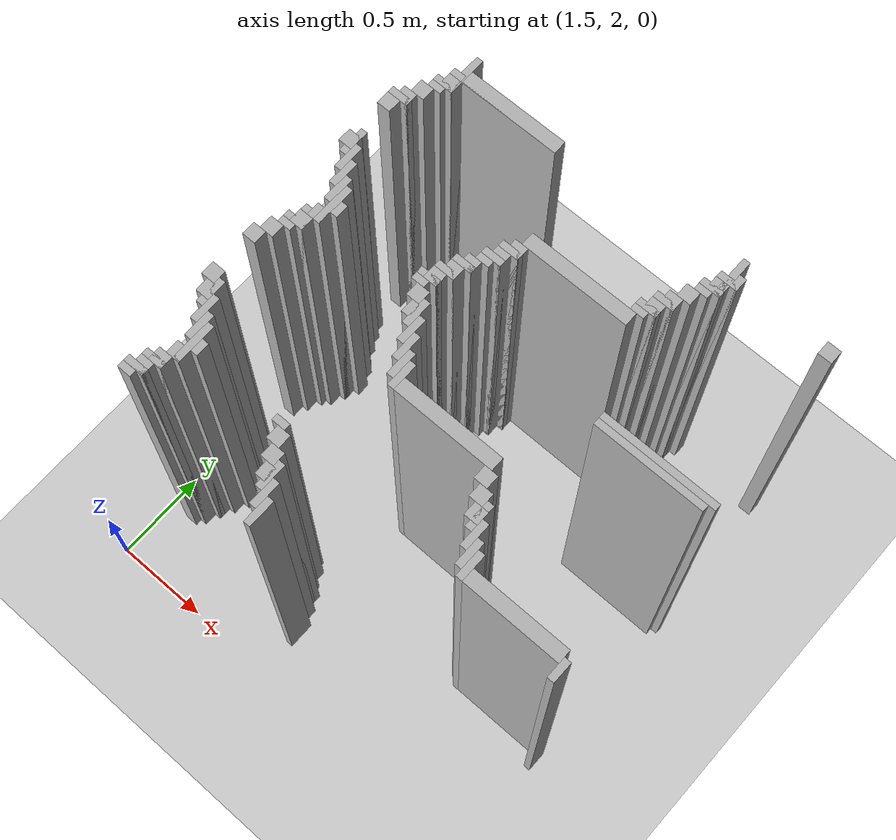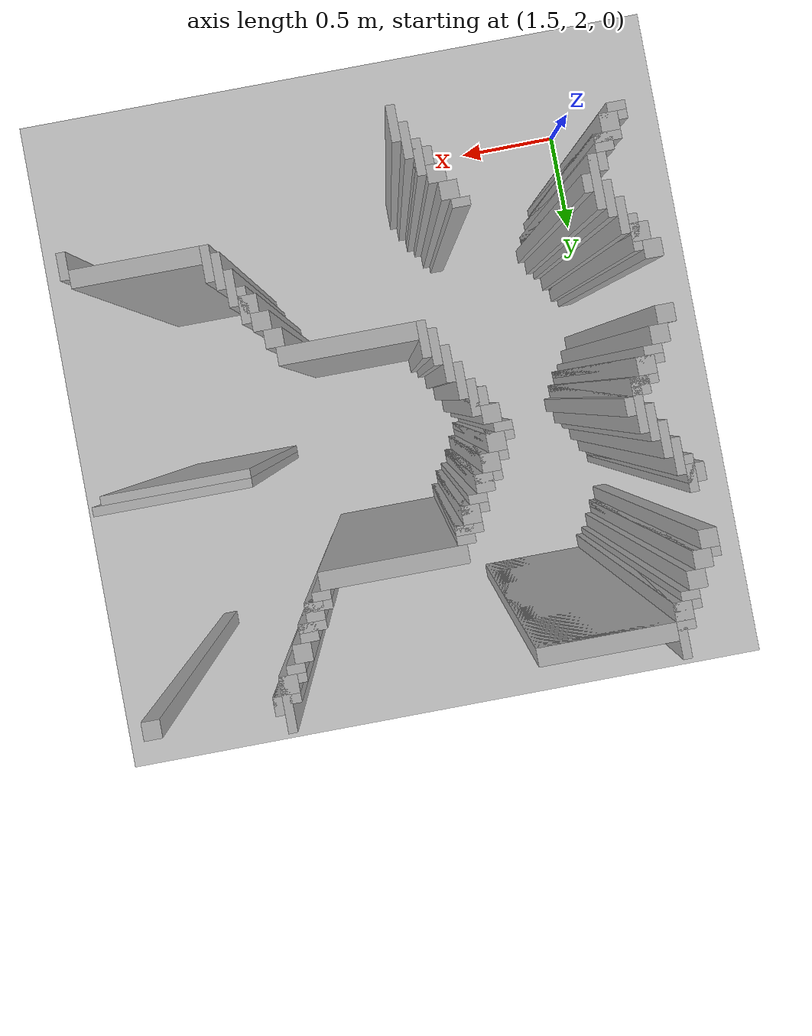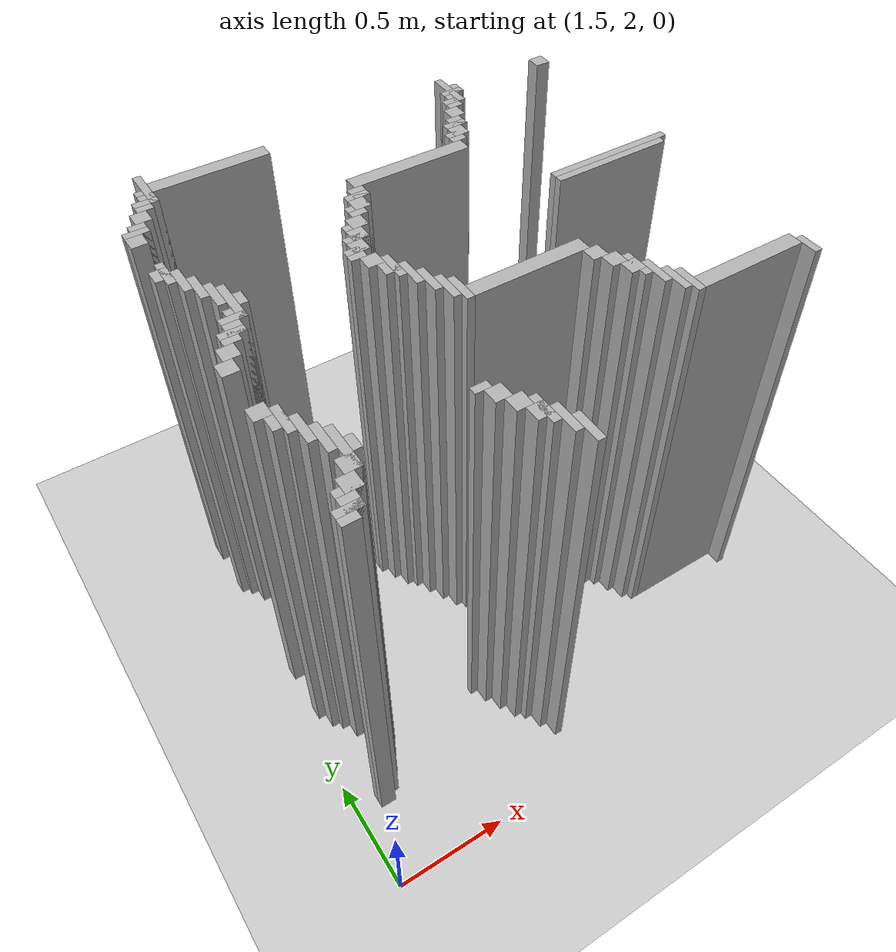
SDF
<sdf version="1.6">
 <world name="slam_world">
  <model name="ground_plane">
   <static>true</static>
   <link name="link">
    <collision name="collision">
     <geometry><plane><normal>0 0 1</normal><size>100 100</size></plane></geometry>
    </collision>
    <visual name="visual">
     <geometry><plane><normal>0 0 1</normal><size>100 100</size></plane></geometry>
     <material>
      <ambient>0.8 0.8 0.8 1</ambient>
      <diffuse>0.8 0.8 0.8 1</diffuse>
      <specular>0.8 0.8 0.8 1</specular>
     </material>
    </visual>
   </link>
  </model>
  <model name="wall_4396">
   <static>true</static>
   <pose>1.75754060324826 4.280742459396752 1.0 0 0 0</pose>
   <link name="link">
    <collision name="collision">
     <geometry><box><size>0.03480278422273782 0.2088167053364269 2.0</size></box></geometry>
    </collision>
    <visual name="visual">
     <geometry><box><size>0.03480278422273782 0.2088167053364269 2.0</size></box></geometry>
     <material><ambient>0.5 0.5 0.5 1</ambient><diffuse>0.7 0.7 0.7 1</diffuse></material>
    </visual>
   </link>
  </model>
  <model name="wall_4397">
   <static>true</static>
   <pose>3.219257540603248 4.280742459396752 1.0 0 0 0</pose>
   <link name="link">
    <collision name="collision">
     <geometry><box><size>0.03480278422273782 0.2088167053364269 2.0</size></box></geometry>
    </collision>
    <visual name="visual">
     <geometry><box><size>0.03480278422273782 0.2088167053364269 2.0</size></box></geometry>
     <material><ambient>0.5 0.5 0.5 1</ambient><diffuse>0.7 0.7 0.7 1</diffuse></material>
    </visual>
   </link>
  </model>
  <model name="wall_4415">
   <static>true</static>
   <pose>2.0359628770301623 4.280742459396752 1.0 0 0 0</pose>
   <link name="link">
    <collision name="collision">
     <geometry><box><size>0.5220417633410672 0.06960556844547564 2.0</size></box></geometry>
    </collision>
    <visual name="visual">
     <geometry><box><size>0.5220417633410672 0.06960556844547564 2.0</size></box></geometry>
     <material><ambient>0.5 0.5 0.5 1</ambient><diffuse>0.7 0.7 0.7 1</diffuse></material>
    </visual>
   </link>
  </model>
  <model name="wall_4416">
   <static>true</static>
   <pose>3.254060324825986 4.280742459396752 1.0 0 0 0</pose>
   <link name="link">
    <collision name="collision">
     <geometry><box><size>0.03480278422273782 0.06960556844547564 2.0</size></box></geometry>
    </collision>
    <visual name="visual">
     <geometry><box><size>0.03480278422273782 0.06960556844547564 2.0</size></box></geometry>
     <material><ambient>0.5 0.5 0.5 1</ambient><diffuse>0.7 0.7 0.7 1</diffuse></material>
    </visual>
   </link>
  </model>
  <model name="wall_4417">
   <static>true</static>
   <pose>3.7238979118329465 4.280742459396752 1.0 0 0 0</pose>
   <link name="link">
    <collision name="collision">
     <geometry><box><size>0.06960556844547564 0.06960556844547564 2.0</size></box></geometry>
    </collision>
    <visual name="visual">
     <geometry><box><size>0.06960556844547564 0.06960556844547564 2.0</size></box></geometry>
     <material><ambient>0.5 0.5 0.5 1</ambient><diffuse>0.7 0.7 0.7 1</diffuse></material>
    </visual>
   </link>
  </model>
  <model name="wall_4429">
   <static>true</static>
   <pose>2.0011600928074245 4.263341067285383 1.0 0 0 0</pose>
   <link name="link">
    <collision name="collision">
     <geometry><box><size>0.5916473317865429 0.03480278422273782 2.0</size></box></geometry>
    </collision>
    <visual name="visual">
     <geometry><box><size>0.5916473317865429 0.03480278422273782 2.0</size></box></geometry>
     <material><ambient>0.5 0.5 0.5 1</ambient><diffuse>0.7 0.7 0.7 1</diffuse></material>
    </visual>
   </link>
  </model>
  <model name="wall_4430">
   <static>true</static>
   <pose>3.219257540603248 4.263341067285383 1.0 0 0 0</pose>
   <link name="link">
    <collision name="collision">
     <geometry><box><size>0.10440835266821345 0.03480278422273782 2.0</size></box></geometry>
    </collision>
    <visual name="visual">
     <geometry><box><size>0.10440835266821345 0.03480278422273782 2.0</size></box></geometry>
     <material><ambient>0.5 0.5 0.5 1</ambient><diffuse>0.7 0.7 0.7 1</diffuse></material>
    </visual>
   </link>
  </model>
  <model name="wall_4442">
   <static>true</static>
   <pose>1.740139211136891 4.211136890951276 1.0 0 0 0</pose>
   <link name="link">
    <collision name="collision">
     <geometry><box><size>0.06960556844547564 0.06960556844547564 2.0</size></box></geometry>
    </collision>
    <visual name="visual">
     <geometry><box><size>0.06960556844547564 0.06960556844547564 2.0</size></box></geometry>
     <material><ambient>0.5 0.5 0.5 1</ambient><diffuse>0.7 0.7 0.7 1</diffuse></material>
    </visual>
   </link>
  </model>
  <model name="wall_4443">
   <static>true</static>
   <pose>3.201856148491879 4.211136890951276 1.0 0 0 0</pose>
   <link name="link">
    <collision name="collision">
     <geometry><box><size>0.06960556844547564 0.06960556844547564 2.0</size></box></geometry>
    </collision>
    <visual name="visual">
     <geometry><box><size>0.06960556844547564 0.06960556844547564 2.0</size></box></geometry>
     <material><ambient>0.5 0.5 0.5 1</ambient><diffuse>0.7 0.7 0.7 1</diffuse></material>
    </visual>
   </link>
  </model>
  <model name="wall_4457">
   <static>true</static>
   <pose>1.722737819025522 4.193735498839907 1.0 0 0 0</pose>
   <link name="link">
    <collision name="collision">
     <geometry><box><size>0.10440835266821345 0.03480278422273782 2.0</size></box></geometry>
    </collision>
    <visual name="visual">
     <geometry><box><size>0.10440835266821345 0.03480278422273782 2.0</size></box></geometry>
     <material><ambient>0.5 0.5 0.5 1</ambient><diffuse>0.7 0.7 0.7 1</diffuse></material>
    </visual>
   </link>
  </model>
  <model name="wall_4458">
   <static>true</static>
   <pose>3.1844547563805103 4.193735498839907 1.0 0 0 0</pose>
   <link name="link">
    <collision name="collision">
     <geometry><box><size>0.10440835266821345 0.03480278422273782 2.0</size></box></geometry>
    </collision>
    <visual name="visual">
     <geometry><box><size>0.10440835266821345 0.03480278422273782 2.0</size></box></geometry>
     <material><ambient>0.5 0.5 0.5 1</ambient><diffuse>0.7 0.7 0.7 1</diffuse></material>
    </visual>
   </link>
  </model>
  <model name="wall_4472">
   <static>true</static>
   <pose>1.705336426914153 4.158932714617169 1.0 0 0 0</pose>
   <link name="link">
    <collision name="collision">
     <geometry><box><size>0.06960556844547564 0.03480278422273782 2.0</size></box></geometry>
    </collision>
    <visual name="visual">
     <geometry><box><size>0.06960556844547564 0.03480278422273782 2.0</size></box></geometry>
     <material><ambient>0.5 0.5 0.5 1</ambient><diffuse>0.7 0.7 0.7 1</diffuse></material>
    </visual>
   </link>
  </model>
  <model name="wall_4473">
   <static>true</static>
   <pose>3.167053364269141 4.158932714617169 1.0 0 0 0</pose>
   <link name="link">
    <collision name="collision">
     <geometry><box><size>0.06960556844547564 0.03480278422273782 2.0</size></box></geometry>
    </collision>
    <visual name="visual">
     <geometry><box><size>0.06960556844547564 0.03480278422273782 2.0</size></box></geometry>
     <material><ambient>0.5 0.5 0.5 1</ambient><diffuse>0.7 0.7 0.7 1</diffuse></material>
    </visual>
   </link>
  </model>
  <model name="wall_4482">
   <static>true</static>
   <pose>1.6705336426914152 4.106728538283062 1.0 0 0 0</pose>
   <link name="link">
    <collision name="collision">
     <geometry><box><size>0.06960556844547564 0.06960556844547564 2.0</size></box></geometry>
    </collision>
    <visual name="visual">
     <geometry><box><size>0.06960556844547564 0.06960556844547564 2.0</size></box></geometry>
     <material><ambient>0.5 0.5 0.5 1</ambient><diffuse>0.7 0.7 0.7 1</diffuse></material>
    </visual>
   </link>
  </model>
  <model name="wall_4483">
   <static>true</static>
   <pose>3.1322505800464038 4.106728538283062 1.0 0 0 0</pose>
   <link name="link">
    <collision name="collision">
     <geometry><box><size>0.06960556844547564 0.06960556844547564 2.0</size></box></geometry>
    </collision>
    <visual name="visual">
     <geometry><box><size>0.06960556844547564 0.06960556844547564 2.0</size></box></geometry>
     <material><ambient>0.5 0.5 0.5 1</ambient><diffuse>0.7 0.7 0.7 1</diffuse></material>
    </visual>
   </link>
  </model>
  <model name="wall_4497">
   <static>true</static>
   <pose>1.6357308584686774 4.037122969837587 1.0 0 0 0</pose>
   <link name="link">
    <collision name="collision">
     <geometry><box><size>0.06960556844547564 0.06960556844547564 2.0</size></box></geometry>
    </collision>
    <visual name="visual">
     <geometry><box><size>0.06960556844547564 0.06960556844547564 2.0</size></box></geometry>
     <material><ambient>0.5 0.5 0.5 1</ambient><diffuse>0.7 0.7 0.7 1</diffuse></material>
    </visual>
   </link>
  </model>
  <model name="wall_4498">
   <static>true</static>
   <pose>3.097447795823666 4.037122969837587 1.0 0 0 0</pose>
   <link name="link">
    <collision name="collision">
     <geometry><box><size>0.06960556844547564 0.06960556844547564 2.0</size></box></geometry>
    </collision>
    <visual name="visual">
     <geometry><box><size>0.06960556844547564 0.06960556844547564 2.0</size></box></geometry>
     <material><ambient>0.5 0.5 0.5 1</ambient><diffuse>0.7 0.7 0.7 1</diffuse></material>
    </visual>
   </link>
  </model>
  <model name="wall_4512">
   <static>true</static>
   <pose>1.6183294663573085 4.019721577726218 1.0 0 0 0</pose>
   <link name="link">
    <collision name="collision">
     <geometry><box><size>0.10440835266821345 0.03480278422273782 2.0</size></box></geometry>
    </collision>
    <visual name="visual">
     <geometry><box><size>0.10440835266821345 0.03480278422273782 2.0</size></box></geometry>
     <material><ambient>0.5 0.5 0.5 1</ambient><diffuse>0.7 0.7 0.7 1</diffuse></material>
    </visual>
   </link>
  </model>
  <model name="wall_4513">
   <static>true</static>
   <pose>3.0800464037122968 4.019721577726218 1.0 0 0 0</pose>
   <link name="link">
    <collision name="collision">
     <geometry><box><size>0.10440835266821345 0.03480278422273782 2.0</size></box></geometry>
    </collision>
    <visual name="visual">
     <geometry><box><size>0.10440835266821345 0.03480278422273782 2.0</size></box></geometry>
     <material><ambient>0.5 0.5 0.5 1</ambient><diffuse>0.7 0.7 0.7 1</diffuse></material>
    </visual>
   </link>
  </model>
  <model name="wall_4527">
   <static>true</static>
   <pose>1.6009280742459395 3.967517401392111 1.0 0 0 0</pose>
   <link name="link">
    <collision name="collision">
     <geometry><box><size>0.06960556844547564 0.06960556844547564 2.0</size></box></geometry>
    </collision>
    <visual name="visual">
     <geometry><box><size>0.06960556844547564 0.06960556844547564 2.0</size></box></geometry>
     <material><ambient>0.5 0.5 0.5 1</ambient><diffuse>0.7 0.7 0.7 1</diffuse></material>
    </visual>
   </link>
  </model>
  <model name="wall_4528">
   <static>true</static>
   <pose>3.062645011600928 3.967517401392111 1.0 0 0 0</pose>
   <link name="link">
    <collision name="collision">
     <geometry><box><size>0.06960556844547564 0.06960556844547564 2.0</size></box></geometry>
    </collision>
    <visual name="visual">
     <geometry><box><size>0.06960556844547564 0.06960556844547564 2.0</size></box></geometry>
     <material><ambient>0.5 0.5 0.5 1</ambient><diffuse>0.7 0.7 0.7 1</diffuse></material>
    </visual>
   </link>
  </model>
  <model name="wall_4536">
   <static>true</static>
   <pose>3.045243619489559 3.9501160092807424 1.0 0 0 0</pose>
   <link name="link">
    <collision name="collision">
     <geometry><box><size>0.10440835266821345 0.03480278422273782 2.0</size></box></geometry>
    </collision>
    <visual name="visual">
     <geometry><box><size>0.10440835266821345 0.03480278422273782 2.0</size></box></geometry>
     <material><ambient>0.5 0.5 0.5 1</ambient><diffuse>0.7 0.7 0.7 1</diffuse></material>
    </visual>
   </link>
  </model>
  <model name="wall_4551">
   <static>true</static>
   <pose>3.02784222737819 3.9153132250580045 1.0 0 0 0</pose>
   <link name="link">
    <collision name="collision">
     <geometry><box><size>0.06960556844547564 0.03480278422273782 2.0</size></box></geometry>
    </collision>
    <visual name="visual">
     <geometry><box><size>0.06960556844547564 0.03480278422273782 2.0</size></box></geometry>
     <material><ambient>0.5 0.5 0.5 1</ambient><diffuse>0.7 0.7 0.7 1</diffuse></material>
    </visual>
   </link>
  </model>
  <model name="wall_4560">
   <static>true</static>
   <pose>2.7494199535962878 3.863109048723898 1.0 0 0 0</pose>
   <link name="link">
    <collision name="collision">
     <geometry><box><size>0.5568445475638051 0.06960556844547564 2.0</size></box></geometry>
    </collision>
    <visual name="visual">
     <geometry><box><size>0.5568445475638051 0.06960556844547564 2.0</size></box></geometry>
     <material><ambient>0.5 0.5 0.5 1</ambient><diffuse>0.7 0.7 0.7 1</diffuse></material>
    </visual>
   </link>
  </model>
  <model name="wall_4574">
   <static>true</static>
   <pose>2.470997679814385 3.793503480278422 1.0 0 0 0</pose>
   <link name="link">
    <collision name="collision">
     <geometry><box><size>0.06960556844547564 0.06960556844547564 2.0</size></box></geometry>
    </collision>
    <visual name="visual">
     <geometry><box><size>0.06960556844547564 0.06960556844547564 2.0</size></box></geometry>
     <material><ambient>0.5 0.5 0.5 1</ambient><diffuse>0.7 0.7 0.7 1</diffuse></material>
    </visual>
   </link>
  </model>
  <model name="wall_4587">
   <static>true</static>
   <pose>1.6183294663573085 3.7238979118329465 1.0 0 0 0</pose>
   <link name="link">
    <collision name="collision">
     <geometry><box><size>0.03480278422273782 0.13921113689095127 2.0</size></box></geometry>
    </collision>
    <visual name="visual">
     <geometry><box><size>0.03480278422273782 0.13921113689095127 2.0</size></box></geometry>
     <material><ambient>0.5 0.5 0.5 1</ambient><diffuse>0.7 0.7 0.7 1</diffuse></material>
    </visual>
   </link>
  </model>
  <model name="wall_4588">
   <static>true</static>
   <pose>2.453596287703016 3.776102088167053 1.0 0 0 0</pose>
   <link name="link">
    <collision name="collision">
     <geometry><box><size>0.10440835266821345 0.03480278422273782 2.0</size></box></geometry>
    </collision>
    <visual name="visual">
     <geometry><box><size>0.10440835266821345 0.03480278422273782 2.0</size></box></geometry>
     <material><ambient>0.5 0.5 0.5 1</ambient><diffuse>0.7 0.7 0.7 1</diffuse></material>
    </visual>
   </link>
  </model>
  <model name="wall_4601">
   <static>true</static>
   <pose>1.6009280742459395 3.7238979118329465 1.0 0 0 0</pose>
   <link name="link">
    <collision name="collision">
     <geometry><box><size>0.06960556844547564 0.06960556844547564 2.0</size></box></geometry>
    </collision>
    <visual name="visual">
     <geometry><box><size>0.06960556844547564 0.06960556844547564 2.0</size></box></geometry>
     <material><ambient>0.5 0.5 0.5 1</ambient><diffuse>0.7 0.7 0.7 1</diffuse></material>
    </visual>
   </link>
  </model>
  <model name="wall_4602">
   <static>true</static>
   <pose>2.436194895591647 3.7238979118329465 1.0 0 0 0</pose>
   <link name="link">
    <collision name="collision">
     <geometry><box><size>0.06960556844547564 0.06960556844547564 2.0</size></box></geometry>
    </collision>
    <visual name="visual">
     <geometry><box><size>0.06960556844547564 0.06960556844547564 2.0</size></box></geometry>
     <material><ambient>0.5 0.5 0.5 1</ambient><diffuse>0.7 0.7 0.7 1</diffuse></material>
    </visual>
   </link>
  </model>
  <model name="wall_4615">
   <static>true</static>
   <pose>1.6531322505800463 3.6542923433874708 1.0 0 0 0</pose>
   <link name="link">
    <collision name="collision">
     <geometry><box><size>0.03480278422273782 0.13921113689095127 2.0</size></box></geometry>
    </collision>
    <visual name="visual">
     <geometry><box><size>0.03480278422273782 0.13921113689095127 2.0</size></box></geometry>
     <material><ambient>0.5 0.5 0.5 1</ambient><diffuse>0.7 0.7 0.7 1</diffuse></material>
    </visual>
   </link>
  </model>
  <model name="wall_4616">
   <static>true</static>
   <pose>2.4187935034802783 3.706496519721578 1.0 0 0 0</pose>
   <link name="link">
    <collision name="collision">
     <geometry><box><size>0.10440835266821345 0.03480278422273782 2.0</size></box></geometry>
    </collision>
    <visual name="visual">
     <geometry><box><size>0.10440835266821345 0.03480278422273782 2.0</size></box></geometry>
     <material><ambient>0.5 0.5 0.5 1</ambient><diffuse>0.7 0.7 0.7 1</diffuse></material>
    </visual>
   </link>
  </model>
  <model name="wall_4628">
   <static>true</static>
   <pose>2.4013921113689096 3.67169373549884 1.0 0 0 0</pose>
   <link name="link">
    <collision name="collision">
     <geometry><box><size>0.06960556844547564 0.03480278422273782 2.0</size></box></geometry>
    </collision>
    <visual name="visual">
     <geometry><box><size>0.06960556844547564 0.03480278422273782 2.0</size></box></geometry>
     <material><ambient>0.5 0.5 0.5 1</ambient><diffuse>0.7 0.7 0.7 1</diffuse></material>
    </visual>
   </link>
  </model>
  <model name="wall_4638">
   <static>true</static>
   <pose>1.6879350348027842 3.584686774941995 1.0 0 0 0</pose>
   <link name="link">
    <collision name="collision">
     <geometry><box><size>0.03480278422273782 0.13921113689095127 2.0</size></box></geometry>
    </collision>
    <visual name="visual">
     <geometry><box><size>0.03480278422273782 0.13921113689095127 2.0</size></box></geometry>
     <material><ambient>0.5 0.5 0.5 1</ambient><diffuse>0.7 0.7 0.7 1</diffuse></material>
    </visual>
   </link>
  </model>
  <model name="wall_4639">
   <static>true</static>
   <pose>2.3665893271461718 3.619489559164733 1.0 0 0 0</pose>
   <link name="link">
    <collision name="collision">
     <geometry><box><size>0.06960556844547564 0.06960556844547564 2.0</size></box></geometry>
    </collision>
    <visual name="visual">
     <geometry><box><size>0.06960556844547564 0.06960556844547564 2.0</size></box></geometry>
     <material><ambient>0.5 0.5 0.5 1</ambient><diffuse>0.7 0.7 0.7 1</diffuse></material>
    </visual>
   </link>
  </model>
  <model name="wall_4651">
   <static>true</static>
   <pose>2.3491879350348026 3.602088167053364 1.0 0 0 0</pose>
   <link name="link">
    <collision name="collision">
     <geometry><box><size>0.10440835266821345 0.03480278422273782 2.0</size></box></geometry>
    </collision>
    <visual name="visual">
     <geometry><box><size>0.10440835266821345 0.03480278422273782 2.0</size></box></geometry>
     <material><ambient>0.5 0.5 0.5 1</ambient><diffuse>0.7 0.7 0.7 1</diffuse></material>
    </visual>
   </link>
  </model>
  <model name="wall_4661">
   <static>true</static>
   <pose>1.722737819025522 3.51508120649652 1.0 0 0 0</pose>
   <link name="link">
    <collision name="collision">
     <geometry><box><size>0.03480278422273782 0.13921113689095127 2.0</size></box></geometry>
    </collision>
    <visual name="visual">
     <geometry><box><size>0.03480278422273782 0.13921113689095127 2.0</size></box></geometry>
     <material><ambient>0.5 0.5 0.5 1</ambient><diffuse>0.7 0.7 0.7 1</diffuse></material>
    </visual>
   </link>
  </model>
  <model name="wall_4662">
   <static>true</static>
   <pose>2.331786542923434 3.549883990719257 1.0 0 0 0</pose>
   <link name="link">
    <collision name="collision">
     <geometry><box><size>0.06960556844547564 0.06960556844547564 2.0</size></box></geometry>
    </collision>
    <visual name="visual">
     <geometry><box><size>0.06960556844547564 0.06960556844547564 2.0</size></box></geometry>
     <material><ambient>0.5 0.5 0.5 1</ambient><diffuse>0.7 0.7 0.7 1</diffuse></material>
    </visual>
   </link>
  </model>
  <model name="wall_4675">
   <static>true</static>
   <pose>1.75754060324826 3.445475638051044 1.0 0 0 0</pose>
   <link name="link">
    <collision name="collision">
     <geometry><box><size>0.03480278422273782 0.2088167053364269 2.0</size></box></geometry>
    </collision>
    <visual name="visual">
     <geometry><box><size>0.03480278422273782 0.2088167053364269 2.0</size></box></geometry>
     <material><ambient>0.5 0.5 0.5 1</ambient><diffuse>0.7 0.7 0.7 1</diffuse></material>
    </visual>
   </link>
  </model>
  <model name="wall_4676">
   <static>true</static>
   <pose>2.3143851508120648 3.5324825986078885 1.0 0 0 0</pose>
   <link name="link">
    <collision name="collision">
     <geometry><box><size>0.10440835266821345 0.03480278422273782 2.0</size></box></geometry>
    </collision>
    <visual name="visual">
     <geometry><box><size>0.10440835266821345 0.03480278422273782 2.0</size></box></geometry>
     <material><ambient>0.5 0.5 0.5 1</ambient><diffuse>0.7 0.7 0.7 1</diffuse></material>
    </visual>
   </link>
  </model>
  <model name="wall_4688">
   <static>true</static>
   <pose>2.296983758700696 3.480278422273782 1.0 0 0 0</pose>
   <link name="link">
    <collision name="collision">
     <geometry><box><size>0.06960556844547564 0.06960556844547564 2.0</size></box></geometry>
    </collision>
    <visual name="visual">
     <geometry><box><size>0.06960556844547564 0.06960556844547564 2.0</size></box></geometry>
     <material><ambient>0.5 0.5 0.5 1</ambient><diffuse>0.7 0.7 0.7 1</diffuse></material>
    </visual>
   </link>
  </model>
  <model name="wall_4697">
   <static>true</static>
   <pose>1.7923433874709975 3.445475638051044 1.0 0 0 0</pose>
   <link name="link">
    <collision name="collision">
     <geometry><box><size>0.03480278422273782 0.06960556844547564 2.0</size></box></geometry>
    </collision>
    <visual name="visual">
     <geometry><box><size>0.03480278422273782 0.06960556844547564 2.0</size></box></geometry>
     <material><ambient>0.5 0.5 0.5 1</ambient><diffuse>0.7 0.7 0.7 1</diffuse></material>
    </visual>
   </link>
  </model>
  <model name="wall_4698">
   <static>true</static>
   <pose>2.279582366589327 3.4628770301624128 1.0 0 0 0</pose>
   <link name="link">
    <collision name="collision">
     <geometry><box><size>0.10440835266821345 0.03480278422273782 2.0</size></box></geometry>
    </collision>
    <visual name="visual">
     <geometry><box><size>0.10440835266821345 0.03480278422273782 2.0</size></box></geometry>
     <material><ambient>0.5 0.5 0.5 1</ambient><diffuse>0.7 0.7 0.7 1</diffuse></material>
    </visual>
   </link>
  </model>
  <model name="wall_4699">
   <static>true</static>
   <pose>3.4976798143851506 3.4628770301624128 1.0 0 0 0</pose>
   <link name="link">
    <collision name="collision">
     <geometry><box><size>0.5916473317865429 0.03480278422273782 2.0</size></box></geometry>
    </collision>
    <visual name="visual">
     <geometry><box><size>0.5916473317865429 0.03480278422273782 2.0</size></box></geometry>
     <material><ambient>0.5 0.5 0.5 1</ambient><diffuse>0.7 0.7 0.7 1</diffuse></material>
    </visual>
   </link>
  </model>
  <model name="wall_4711">
   <static>true</static>
   <pose>2.262180974477958 3.428074245939675 1.0 0 0 0</pose>
   <link name="link">
    <collision name="collision">
     <geometry><box><size>0.06960556844547564 0.03480278422273782 2.0</size></box></geometry>
    </collision>
    <visual name="visual">
     <geometry><box><size>0.06960556844547564 0.03480278422273782 2.0</size></box></geometry>
     <material><ambient>0.5 0.5 0.5 1</ambient><diffuse>0.7 0.7 0.7 1</diffuse></material>
    </visual>
   </link>
  </model>
  <model name="wall_4712">
   <static>true</static>
   <pose>3.480278422273782 3.428074245939675 1.0 0 0 0</pose>
   <link name="link">
    <collision name="collision">
     <geometry><box><size>0.5568445475638051 0.03480278422273782 2.0</size></box></geometry>
    </collision>
    <visual name="visual">
     <geometry><box><size>0.5568445475638051 0.03480278422273782 2.0</size></box></geometry>
     <material><ambient>0.5 0.5 0.5 1</ambient><diffuse>0.7 0.7 0.7 1</diffuse></material>
    </visual>
   </link>
  </model>
  <model name="wall_4720">
   <static>true</static>
   <pose>1.740139211136891 3.3758700696055683 1.0 0 0 0</pose>
   <link name="link">
    <collision name="collision">
     <geometry><box><size>0.06960556844547564 0.06960556844547564 2.0</size></box></geometry>
    </collision>
    <visual name="visual">
     <geometry><box><size>0.06960556844547564 0.06960556844547564 2.0</size></box></geometry>
     <material><ambient>0.5 0.5 0.5 1</ambient><diffuse>0.7 0.7 0.7 1</diffuse></material>
    </visual>
   </link>
  </model>
  <model name="wall_4721">
   <static>true</static>
   <pose>2.296983758700696 3.3758700696055683 1.0 0 0 0</pose>
   <link name="link">
    <collision name="collision">
     <geometry><box><size>0.06960556844547564 0.06960556844547564 2.0</size></box></geometry>
    </collision>
    <visual name="visual">
     <geometry><box><size>0.06960556844547564 0.06960556844547564 2.0</size></box></geometry>
     <material><ambient>0.5 0.5 0.5 1</ambient><diffuse>0.7 0.7 0.7 1</diffuse></material>
    </visual>
   </link>
  </model>
  <model name="wall_4734">
   <static>true</static>
   <pose>1.722737819025522 3.358468677494199 1.0 0 0 0</pose>
   <link name="link">
    <collision name="collision">
     <geometry><box><size>0.10440835266821345 0.03480278422273782 2.0</size></box></geometry>
    </collision>
    <visual name="visual">
     <geometry><box><size>0.10440835266821345 0.03480278422273782 2.0</size></box></geometry>
     <material><ambient>0.5 0.5 0.5 1</ambient><diffuse>0.7 0.7 0.7 1</diffuse></material>
    </visual>
   </link>
  </model>
  <model name="wall_4735">
   <static>true</static>
   <pose>2.3491879350348026 3.3062645011600926 1.0 0 0 0</pose>
   <link name="link">
    <collision name="collision">
     <geometry><box><size>0.03480278422273782 0.13921113689095127 2.0</size></box></geometry>
    </collision>
    <visual name="visual">
     <geometry><box><size>0.03480278422273782 0.13921113689095127 2.0</size></box></geometry>
     <material><ambient>0.5 0.5 0.5 1</ambient><diffuse>0.7 0.7 0.7 1</diffuse></material>
    </visual>
   </link>
  </model>
  <model name="wall_4748">
   <static>true</static>
   <pose>1.705336426914153 3.3062645011600926 1.0 0 0 0</pose>
   <link name="link">
    <collision name="collision">
     <geometry><box><size>0.06960556844547564 0.06960556844547564 2.0</size></box></geometry>
    </collision>
    <visual name="visual">
     <geometry><box><size>0.06960556844547564 0.06960556844547564 2.0</size></box></geometry>
     <material><ambient>0.5 0.5 0.5 1</ambient><diffuse>0.7 0.7 0.7 1</diffuse></material>
    </visual>
   </link>
  </model>
  <model name="wall_4749">
   <static>true</static>
   <pose>2.331786542923434 3.3062645011600926 1.0 0 0 0</pose>
   <link name="link">
    <collision name="collision">
     <geometry><box><size>0.06960556844547564 0.06960556844547564 2.0</size></box></geometry>
    </collision>
    <visual name="visual">
     <geometry><box><size>0.06960556844547564 0.06960556844547564 2.0</size></box></geometry>
     <material><ambient>0.5 0.5 0.5 1</ambient><diffuse>0.7 0.7 0.7 1</diffuse></material>
    </visual>
   </link>
  </model>
  <model name="wall_4762">
   <static>true</static>
   <pose>1.6879350348027842 3.288863109048724 1.0 0 0 0</pose>
   <link name="link">
    <collision name="collision">
     <geometry><box><size>0.10440835266821345 0.03480278422273782 2.0</size></box></geometry>
    </collision>
    <visual name="visual">
     <geometry><box><size>0.10440835266821345 0.03480278422273782 2.0</size></box></geometry>
     <material><ambient>0.5 0.5 0.5 1</ambient><diffuse>0.7 0.7 0.7 1</diffuse></material>
    </visual>
   </link>
  </model>
  <model name="wall_4763">
   <static>true</static>
   <pose>2.3839907192575405 3.236658932714617 1.0 0 0 0</pose>
   <link name="link">
    <collision name="collision">
     <geometry><box><size>0.03480278422273782 0.13921113689095127 2.0</size></box></geometry>
    </collision>
    <visual name="visual">
     <geometry><box><size>0.03480278422273782 0.13921113689095127 2.0</size></box></geometry>
     <material><ambient>0.5 0.5 0.5 1</ambient><diffuse>0.7 0.7 0.7 1</diffuse></material>
    </visual>
   </link>
  </model>
  <model name="wall_4776">
   <static>true</static>
   <pose>1.6705336426914152 3.254060324825986 1.0 0 0 0</pose>
   <link name="link">
    <collision name="collision">
     <geometry><box><size>0.06960556844547564 0.03480278422273782 2.0</size></box></geometry>
    </collision>
    <visual name="visual">
     <geometry><box><size>0.06960556844547564 0.03480278422273782 2.0</size></box></geometry>
     <material><ambient>0.5 0.5 0.5 1</ambient><diffuse>0.7 0.7 0.7 1</diffuse></material>
    </visual>
   </link>
  </model>
  <model name="wall_4783">
   <static>true</static>
   <pose>1.6357308584686774 3.201856148491879 1.0 0 0 0</pose>
   <link name="link">
    <collision name="collision">
     <geometry><box><size>0.06960556844547564 0.06960556844547564 2.0</size></box></geometry>
    </collision>
    <visual name="visual">
     <geometry><box><size>0.06960556844547564 0.06960556844547564 2.0</size></box></geometry>
     <material><ambient>0.5 0.5 0.5 1</ambient><diffuse>0.7 0.7 0.7 1</diffuse></material>
    </visual>
   </link>
  </model>
  <model name="wall_4784">
   <static>true</static>
   <pose>2.4187935034802783 3.167053364269141 1.0 0 0 0</pose>
   <link name="link">
    <collision name="collision">
     <geometry><box><size>0.03480278422273782 0.13921113689095127 2.0</size></box></geometry>
    </collision>
    <visual name="visual">
     <geometry><box><size>0.03480278422273782 0.13921113689095127 2.0</size></box></geometry>
     <material><ambient>0.5 0.5 0.5 1</ambient><diffuse>0.7 0.7 0.7 1</diffuse></material>
    </visual>
   </link>
  </model>
  <model name="wall_4797">
   <static>true</static>
   <pose>1.6009280742459395 3.1322505800464038 1.0 0 0 0</pose>
   <link name="link">
    <collision name="collision">
     <geometry><box><size>0.06960556844547564 0.06960556844547564 2.0</size></box></geometry>
    </collision>
    <visual name="visual">
     <geometry><box><size>0.06960556844547564 0.06960556844547564 2.0</size></box></geometry>
     <material><ambient>0.5 0.5 0.5 1</ambient><diffuse>0.7 0.7 0.7 1</diffuse></material>
    </visual>
   </link>
  </model>
  <model name="wall_4798">
   <static>true</static>
   <pose>2.453596287703016 3.097447795823666 1.0 0 0 0</pose>
   <link name="link">
    <collision name="collision">
     <geometry><box><size>0.03480278422273782 0.13921113689095127 2.0</size></box></geometry>
    </collision>
    <visual name="visual">
     <geometry><box><size>0.03480278422273782 0.13921113689095127 2.0</size></box></geometry>
     <material><ambient>0.5 0.5 0.5 1</ambient><diffuse>0.7 0.7 0.7 1</diffuse></material>
    </visual>
   </link>
  </model>
  <model name="wall_4812">
   <static>true</static>
   <pose>2.488399071925754 3.062645011600928 1.0 0 0 0</pose>
   <link name="link">
    <collision name="collision">
     <geometry><box><size>0.03480278422273782 0.13921113689095127 2.0</size></box></geometry>
    </collision>
    <visual name="visual">
     <geometry><box><size>0.03480278422273782 0.13921113689095127 2.0</size></box></geometry>
     <material><ambient>0.5 0.5 0.5 1</ambient><diffuse>0.7 0.7 0.7 1</diffuse></material>
    </visual>
   </link>
  </model>
  <model name="wall_4833">
   <static>true</static>
   <pose>2.7668213457076565 3.02784222737819 1.0 0 0 0</pose>
   <link name="link">
    <collision name="collision">
     <geometry><box><size>0.5220417633410672 0.06960556844547564 2.0</size></box></geometry>
    </collision>
    <visual name="visual">
     <geometry><box><size>0.5220417633410672 0.06960556844547564 2.0</size></box></geometry>
     <material><ambient>0.5 0.5 0.5 1</ambient><diffuse>0.7 0.7 0.7 1</diffuse></material>
    </visual>
   </link>
  </model>
  <model name="wall_4857">
   <static>true</static>
   <pose>3.02784222737819 2.9582366589327145 1.0 0 0 0</pose>
   <link name="link">
    <collision name="collision">
     <geometry><box><size>0.06960556844547564 0.06960556844547564 2.0</size></box></geometry>
    </collision>
    <visual name="visual">
     <geometry><box><size>0.06960556844547564 0.06960556844547564 2.0</size></box></geometry>
     <material><ambient>0.5 0.5 0.5 1</ambient><diffuse>0.7 0.7 0.7 1</diffuse></material>
    </visual>
   </link>
  </model>
  <model name="wall_4874">
   <static>true</static>
   <pose>1.6009280742459395 2.8886310904872388 1.0 0 0 0</pose>
   <link name="link">
    <collision name="collision">
     <geometry><box><size>0.06960556844547564 0.06960556844547564 2.0</size></box></geometry>
    </collision>
    <visual name="visual">
     <geometry><box><size>0.06960556844547564 0.06960556844547564 2.0</size></box></geometry>
     <material><ambient>0.5 0.5 0.5 1</ambient><diffuse>0.7 0.7 0.7 1</diffuse></material>
    </visual>
   </link>
  </model>
  <model name="wall_4875">
   <static>true</static>
   <pose>3.062645011600928 2.8886310904872388 1.0 0 0 0</pose>
   <link name="link">
    <collision name="collision">
     <geometry><box><size>0.06960556844547564 0.06960556844547564 2.0</size></box></geometry>
    </collision>
    <visual name="visual">
     <geometry><box><size>0.06960556844547564 0.06960556844547564 2.0</size></box></geometry>
     <material><ambient>0.5 0.5 0.5 1</ambient><diffuse>0.7 0.7 0.7 1</diffuse></material>
    </visual>
   </link>
  </model>
  <model name="wall_4890">
   <static>true</static>
   <pose>1.6531322505800463 2.819025522041763 1.0 0 0 0</pose>
   <link name="link">
    <collision name="collision">
     <geometry><box><size>0.03480278422273782 0.13921113689095127 2.0</size></box></geometry>
    </collision>
    <visual name="visual">
     <geometry><box><size>0.03480278422273782 0.13921113689095127 2.0</size></box></geometry>
     <material><ambient>0.5 0.5 0.5 1</ambient><diffuse>0.7 0.7 0.7 1</diffuse></material>
    </visual>
   </link>
  </model>
  <model name="wall_4891">
   <static>true</static>
   <pose>3.1148491879350346 2.819025522041763 1.0 0 0 0</pose>
   <link name="link">
    <collision name="collision">
     <geometry><box><size>0.03480278422273782 0.13921113689095127 2.0</size></box></geometry>
    </collision>
    <visual name="visual">
     <geometry><box><size>0.03480278422273782 0.13921113689095127 2.0</size></box></geometry>
     <material><ambient>0.5 0.5 0.5 1</ambient><diffuse>0.7 0.7 0.7 1</diffuse></material>
    </visual>
   </link>
  </model>
  <model name="wall_4906">
   <static>true</static>
   <pose>1.6357308584686774 2.819025522041763 1.0 0 0 0</pose>
   <link name="link">
    <collision name="collision">
     <geometry><box><size>0.06960556844547564 0.06960556844547564 2.0</size></box></geometry>
    </collision>
    <visual name="visual">
     <geometry><box><size>0.06960556844547564 0.06960556844547564 2.0</size></box></geometry>
     <material><ambient>0.5 0.5 0.5 1</ambient><diffuse>0.7 0.7 0.7 1</diffuse></material>
    </visual>
   </link>
  </model>
  <model name="wall_4907">
   <static>true</static>
   <pose>3.097447795823666 2.819025522041763 1.0 0 0 0</pose>
   <link name="link">
    <collision name="collision">
     <geometry><box><size>0.06960556844547564 0.06960556844547564 2.0</size></box></geometry>
    </collision>
    <visual name="visual">
     <geometry><box><size>0.06960556844547564 0.06960556844547564 2.0</size></box></geometry>
     <material><ambient>0.5 0.5 0.5 1</ambient><diffuse>0.7 0.7 0.7 1</diffuse></material>
    </visual>
   </link>
  </model>
  <model name="wall_4922">
   <static>true</static>
   <pose>1.6879350348027842 2.7494199535962878 1.0 0 0 0</pose>
   <link name="link">
    <collision name="collision">
     <geometry><box><size>0.03480278422273782 0.13921113689095127 2.0</size></box></geometry>
    </collision>
    <visual name="visual">
     <geometry><box><size>0.03480278422273782 0.13921113689095127 2.0</size></box></geometry>
     <material><ambient>0.5 0.5 0.5 1</ambient><diffuse>0.7 0.7 0.7 1</diffuse></material>
    </visual>
   </link>
  </model>
  <model name="wall_4923">
   <static>true</static>
   <pose>3.1496519721577725 2.7494199535962878 1.0 0 0 0</pose>
   <link name="link">
    <collision name="collision">
     <geometry><box><size>0.03480278422273782 0.13921113689095127 2.0</size></box></geometry>
    </collision>
    <visual name="visual">
     <geometry><box><size>0.03480278422273782 0.13921113689095127 2.0</size></box></geometry>
     <material><ambient>0.5 0.5 0.5 1</ambient><diffuse>0.7 0.7 0.7 1</diffuse></material>
    </visual>
   </link>
  </model>
  <model name="wall_4945">
   <static>true</static>
   <pose>1.722737819025522 2.679814385150812 1.0 0 0 0</pose>
   <link name="link">
    <collision name="collision">
     <geometry><box><size>0.03480278422273782 0.13921113689095127 2.0</size></box></geometry>
    </collision>
    <visual name="visual">
     <geometry><box><size>0.03480278422273782 0.13921113689095127 2.0</size></box></geometry>
     <material><ambient>0.5 0.5 0.5 1</ambient><diffuse>0.7 0.7 0.7 1</diffuse></material>
    </visual>
   </link>
  </model>
  <model name="wall_4946">
   <static>true</static>
   <pose>3.1844547563805103 2.679814385150812 1.0 0 0 0</pose>
   <link name="link">
    <collision name="collision">
     <geometry><box><size>0.03480278422273782 0.13921113689095127 2.0</size></box></geometry>
    </collision>
    <visual name="visual">
     <geometry><box><size>0.03480278422273782 0.13921113689095127 2.0</size></box></geometry>
     <material><ambient>0.5 0.5 0.5 1</ambient><diffuse>0.7 0.7 0.7 1</diffuse></material>
    </visual>
   </link>
  </model>
  <model name="wall_4961">
   <static>true</static>
   <pose>1.75754060324826 2.6102088167053363 1.0 0 0 0</pose>
   <link name="link">
    <collision name="collision">
     <geometry><box><size>0.03480278422273782 0.2088167053364269 2.0</size></box></geometry>
    </collision>
    <visual name="visual">
     <geometry><box><size>0.03480278422273782 0.2088167053364269 2.0</size></box></geometry>
     <material><ambient>0.5 0.5 0.5 1</ambient><diffuse>0.7 0.7 0.7 1</diffuse></material>
    </visual>
   </link>
  </model>
  <model name="wall_4962">
   <static>true</static>
   <pose>3.219257540603248 2.645011600928074 1.0 0 0 0</pose>
   <link name="link">
    <collision name="collision">
     <geometry><box><size>0.03480278422273782 0.13921113689095127 2.0</size></box></geometry>
    </collision>
    <visual name="visual">
     <geometry><box><size>0.03480278422273782 0.13921113689095127 2.0</size></box></geometry>
     <material><ambient>0.5 0.5 0.5 1</ambient><diffuse>0.7 0.7 0.7 1</diffuse></material>
    </visual>
   </link>
  </model>
  <model name="wall_4984">
   <static>true</static>
   <pose>1.7923433874709975 2.6102088167053363 1.0 0 0 0</pose>
   <link name="link">
    <collision name="collision">
     <geometry><box><size>0.03480278422273782 0.06960556844547564 2.0</size></box></geometry>
    </collision>
    <visual name="visual">
     <geometry><box><size>0.03480278422273782 0.06960556844547564 2.0</size></box></geometry>
     <material><ambient>0.5 0.5 0.5 1</ambient><diffuse>0.7 0.7 0.7 1</diffuse></material>
    </visual>
   </link>
  </model>
  <model name="wall_4985">
   <static>true</static>
   <pose>3.480278422273782 2.6102088167053363 1.0 0 0 0</pose>
   <link name="link">
    <collision name="collision">
     <geometry><box><size>0.4872389791183295 0.06960556844547564 2.0</size></box></geometry>
    </collision>
    <visual name="visual">
     <geometry><box><size>0.4872389791183295 0.06960556844547564 2.0</size></box></geometry>
     <material><ambient>0.5 0.5 0.5 1</ambient><diffuse>0.7 0.7 0.7 1</diffuse></material>
    </visual>
   </link>
  </model>
  <model name="wall_4997">
   <static>true</static>
   <pose>2.262180974477958 2.5928074245939676 1.0 0 0 0</pose>
   <link name="link">
    <collision name="collision">
     <geometry><box><size>0.06960556844547564 0.03480278422273782 2.0</size></box></geometry>
    </collision>
    <visual name="visual">
     <geometry><box><size>0.06960556844547564 0.03480278422273782 2.0</size></box></geometry>
     <material><ambient>0.5 0.5 0.5 1</ambient><diffuse>0.7 0.7 0.7 1</diffuse></material>
    </visual>
   </link>
  </model>
  <model name="wall_4998">
   <static>true</static>
   <pose>3.741299303944315 2.5580046403712298 1.0 0 0 0</pose>
   <link name="link">
    <collision name="collision">
     <geometry><box><size>0.03480278422273782 0.10440835266821345 2.0</size></box></geometry>
    </collision>
    <visual name="visual">
     <geometry><box><size>0.03480278422273782 0.10440835266821345 2.0</size></box></geometry>
     <material><ambient>0.5 0.5 0.5 1</ambient><diffuse>0.7 0.7 0.7 1</diffuse></material>
    </visual>
   </link>
  </model>
  <model name="wall_5009">
   <static>true</static>
   <pose>1.740139211136891 2.5406032482598606 1.0 0 0 0</pose>
   <link name="link">
    <collision name="collision">
     <geometry><box><size>0.06960556844547564 0.06960556844547564 2.0</size></box></geometry>
    </collision>
    <visual name="visual">
     <geometry><box><size>0.06960556844547564 0.06960556844547564 2.0</size></box></geometry>
     <material><ambient>0.5 0.5 0.5 1</ambient><diffuse>0.7 0.7 0.7 1</diffuse></material>
    </visual>
   </link>
  </model>
  <model name="wall_5010">
   <static>true</static>
   <pose>2.296983758700696 2.5406032482598606 1.0 0 0 0</pose>
   <link name="link">
    <collision name="collision">
     <geometry><box><size>0.06960556844547564 0.06960556844547564 2.0</size></box></geometry>
    </collision>
    <visual name="visual">
     <geometry><box><size>0.06960556844547564 0.06960556844547564 2.0</size></box></geometry>
     <material><ambient>0.5 0.5 0.5 1</ambient><diffuse>0.7 0.7 0.7 1</diffuse></material>
    </visual>
   </link>
  </model>
  <model name="wall_5033">
   <static>true</static>
   <pose>1.705336426914153 2.470997679814385 1.0 0 0 0</pose>
   <link name="link">
    <collision name="collision">
     <geometry><box><size>0.06960556844547564 0.06960556844547564 2.0</size></box></geometry>
    </collision>
    <visual name="visual">
     <geometry><box><size>0.06960556844547564 0.06960556844547564 2.0</size></box></geometry>
     <material><ambient>0.5 0.5 0.5 1</ambient><diffuse>0.7 0.7 0.7 1</diffuse></material>
    </visual>
   </link>
  </model>
  <model name="wall_5034">
   <static>true</static>
   <pose>2.331786542923434 2.470997679814385 1.0 0 0 0</pose>
   <link name="link">
    <collision name="collision">
     <geometry><box><size>0.06960556844547564 0.06960556844547564 2.0</size></box></geometry>
    </collision>
    <visual name="visual">
     <geometry><box><size>0.06960556844547564 0.06960556844547564 2.0</size></box></geometry>
     <material><ambient>0.5 0.5 0.5 1</ambient><diffuse>0.7 0.7 0.7 1</diffuse></material>
    </visual>
   </link>
  </model>
  <model name="wall_5049">
   <static>true</static>
   <pose>1.6879350348027842 2.453596287703016 1.0 0 0 0</pose>
   <link name="link">
    <collision name="collision">
     <geometry><box><size>0.10440835266821345 0.03480278422273782 2.0</size></box></geometry>
    </collision>
    <visual name="visual">
     <geometry><box><size>0.10440835266821345 0.03480278422273782 2.0</size></box></geometry>
     <material><ambient>0.5 0.5 0.5 1</ambient><diffuse>0.7 0.7 0.7 1</diffuse></material>
    </visual>
   </link>
  </model>
  <model name="wall_5050">
   <static>true</static>
   <pose>2.3839907192575405 2.4013921113689096 1.0 0 0 0</pose>
   <link name="link">
    <collision name="collision">
     <geometry><box><size>0.03480278422273782 0.13921113689095127 2.0</size></box></geometry>
    </collision>
    <visual name="visual">
     <geometry><box><size>0.03480278422273782 0.13921113689095127 2.0</size></box></geometry>
     <material><ambient>0.5 0.5 0.5 1</ambient><diffuse>0.7 0.7 0.7 1</diffuse></material>
    </visual>
   </link>
  </model>
  <model name="wall_5065">
   <static>true</static>
   <pose>1.6705336426914152 2.4013921113689096 1.0 0 0 0</pose>
   <link name="link">
    <collision name="collision">
     <geometry><box><size>0.06960556844547564 0.06960556844547564 2.0</size></box></geometry>
    </collision>
    <visual name="visual">
     <geometry><box><size>0.06960556844547564 0.06960556844547564 2.0</size></box></geometry>
     <material><ambient>0.5 0.5 0.5 1</ambient><diffuse>0.7 0.7 0.7 1</diffuse></material>
    </visual>
   </link>
  </model>
  <model name="wall_5066">
   <static>true</static>
   <pose>2.3665893271461718 2.4013921113689096 1.0 0 0 0</pose>
   <link name="link">
    <collision name="collision">
     <geometry><box><size>0.06960556844547564 0.06960556844547564 2.0</size></box></geometry>
    </collision>
    <visual name="visual">
     <geometry><box><size>0.06960556844547564 0.06960556844547564 2.0</size></box></geometry>
     <material><ambient>0.5 0.5 0.5 1</ambient><diffuse>0.7 0.7 0.7 1</diffuse></material>
    </visual>
   </link>
  </model>
  <model name="wall_5079">
   <static>true</static>
   <pose>1.6531322505800463 2.3839907192575405 1.0 0 0 0</pose>
   <link name="link">
    <collision name="collision">
     <geometry><box><size>0.10440835266821345 0.03480278422273782 2.0</size></box></geometry>
    </collision>
    <visual name="visual">
     <geometry><box><size>0.10440835266821345 0.03480278422273782 2.0</size></box></geometry>
     <material><ambient>0.5 0.5 0.5 1</ambient><diffuse>0.7 0.7 0.7 1</diffuse></material>
    </visual>
   </link>
  </model>
  <model name="wall_5080">
   <static>true</static>
   <pose>2.4187935034802783 2.331786542923434 1.0 0 0 0</pose>
   <link name="link">
    <collision name="collision">
     <geometry><box><size>0.03480278422273782 0.13921113689095127 2.0</size></box></geometry>
    </collision>
    <visual name="visual">
     <geometry><box><size>0.03480278422273782 0.13921113689095127 2.0</size></box></geometry>
     <material><ambient>0.5 0.5 0.5 1</ambient><diffuse>0.7 0.7 0.7 1</diffuse></material>
    </visual>
   </link>
  </model>
  <model name="wall_5094">
   <static>true</static>
   <pose>1.6357308584686774 2.3491879350348026 1.0 0 0 0</pose>
   <link name="link">
    <collision name="collision">
     <geometry><box><size>0.06960556844547564 0.03480278422273782 2.0</size></box></geometry>
    </collision>
    <visual name="visual">
     <geometry><box><size>0.06960556844547564 0.03480278422273782 2.0</size></box></geometry>
     <material><ambient>0.5 0.5 0.5 1</ambient><diffuse>0.7 0.7 0.7 1</diffuse></material>
    </visual>
   </link>
  </model>
  <model name="wall_5104">
   <static>true</static>
   <pose>2.453596287703016 2.262180974477958 1.0 0 0 0</pose>
   <link name="link">
    <collision name="collision">
     <geometry><box><size>0.03480278422273782 0.13921113689095127 2.0</size></box></geometry>
    </collision>
    <visual name="visual">
     <geometry><box><size>0.03480278422273782 0.13921113689095127 2.0</size></box></geometry>
     <material><ambient>0.5 0.5 0.5 1</ambient><diffuse>0.7 0.7 0.7 1</diffuse></material>
    </visual>
   </link>
  </model>
 </world>
</sdf>
